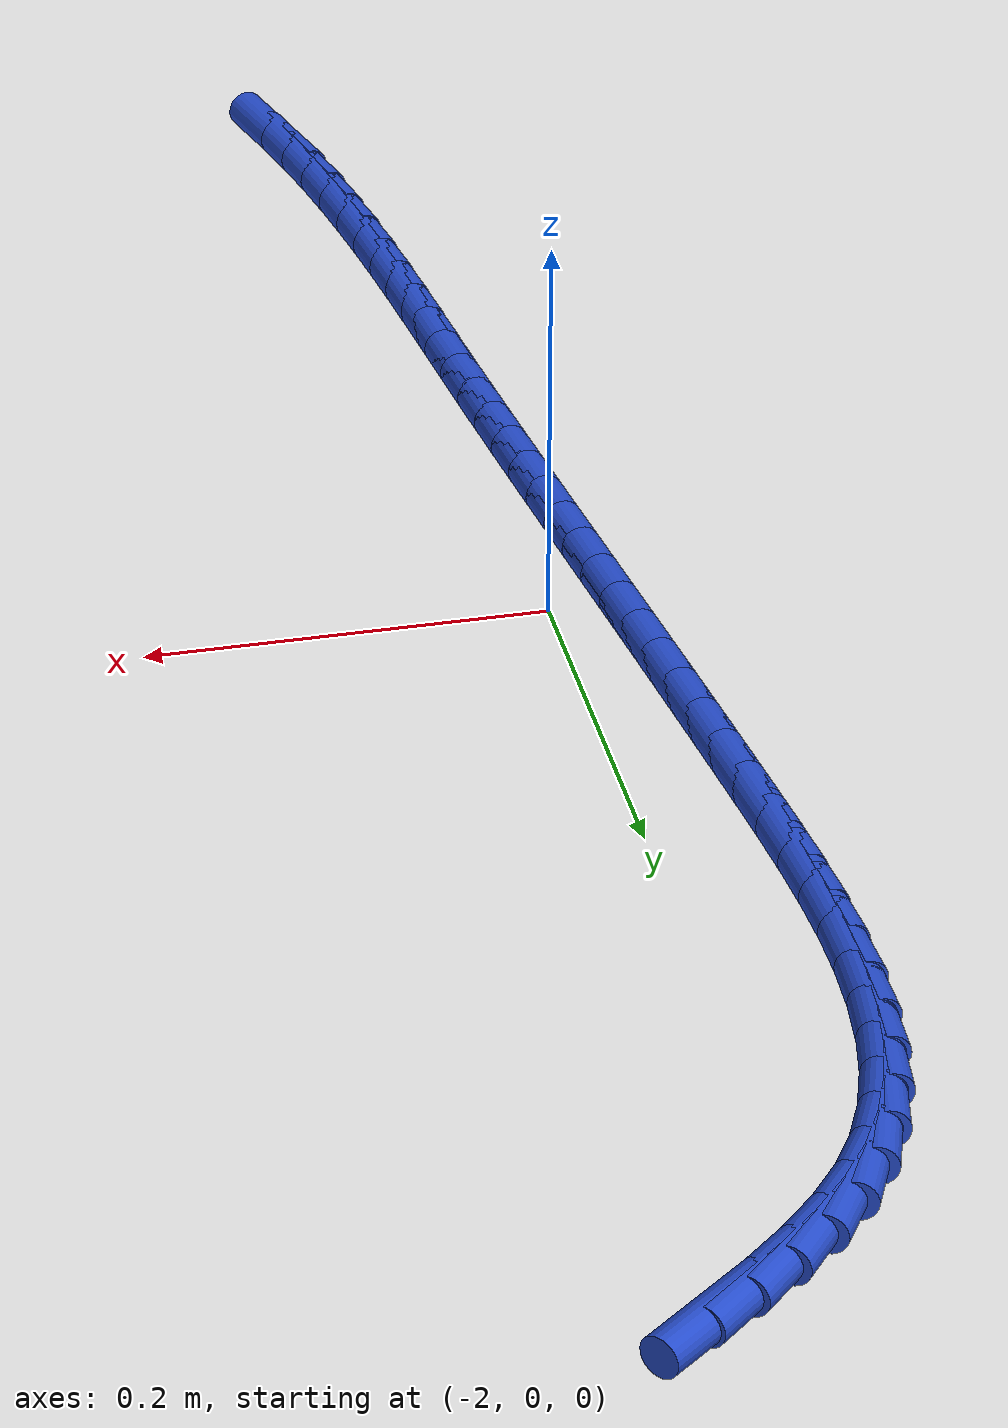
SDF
<sdf version="1.6">
 <world name="default">
  <model name="ground_plane">
   <static>1</static>
   <link name="link">
    <collision name="collision">
     <geometry><plane><normal>0 0 1</normal><size>100 100</size></plane></geometry>
     <surface><friction><ode><mu>100</mu><mu2>50</mu2></ode></friction></surface>
    </collision>
    <visual name="visual">
     <cast_shadows>0</cast_shadows>
     <geometry><plane><normal>0 0 1</normal><size>100 100</size></plane></geometry>
     <material>
      <script><uri>file://media/materials/scripts/gazebo.material</uri><name>Gazebo/WhiteGlow</name></script>
     </material>
    </visual>
   </link>
  </model>
  <model name="line">
   <link name="link_104">
    <pose>-1.9479692266159243 0.5484202005025914 0.01 0 1.57 0.6592279127218851</pose>
    <collision name="collision">
     <geometry><cylinder><radius>0.01</radius><length>0.08</length></cylinder></geometry>
    </collision>
    <visual name="visual">
     <material>
      <script><name>Gazebo/Blue</name><uri>file://media/materials/scripts/gazebo.material</uri></script>
     </material>
     <geometry><cylinder><radius>0.01</radius><length>0.08</length></cylinder></geometry>
    </visual>
   </link>
   <link name="link_105">
    <pose>-1.9694956136626476 0.5317400810880534 0.01 0 1.57 0.7125604217045852</pose>
    <collision name="collision">
     <geometry><cylinder><radius>0.01</radius><length>0.08</length></cylinder></geometry>
    </collision>
    <visual name="visual">
     <material>
      <script><name>Gazebo/Blue</name><uri>file://media/materials/scripts/gazebo.material</uri></script>
     </material>
     <geometry><cylinder><radius>0.01</radius><length>0.08</length></cylinder></geometry>
    </visual>
   </link>
   <link name="link_106">
    <pose>-1.9896621631925504 0.5143163732939728 0.01 0 1.57 0.7882978524208795</pose>
    <collision name="collision">
     <geometry><cylinder><radius>0.01</radius><length>0.08</length></cylinder></geometry>
    </collision>
    <visual name="visual">
     <material>
      <script><name>Gazebo/Blue</name><uri>file://media/materials/scripts/gazebo.material</uri></script>
     </material>
     <geometry><cylinder><radius>0.01</radius><length>0.08</length></cylinder></geometry>
    </visual>
   </link>
   <link name="link_107">
    <pose>-2.0079852460549663 0.49588671862325867 0.01 0 1.57 0.8887429794666911</pose>
    <collision name="collision">
     <geometry><cylinder><radius>0.01</radius><length>0.08</length></cylinder></geometry>
    </collision>
    <visual name="visual">
     <material>
      <script><name>Gazebo/Blue</name><uri>file://media/materials/scripts/gazebo.material</uri></script>
     </material>
     <geometry><cylinder><radius>0.01</radius><length>0.08</length></cylinder></geometry>
    </visual>
   </link>
   <link name="link_108">
    <pose>-2.0239812330992293 0.4761887585788196 0.01 0 1.57 1.0145056644045571</pose>
    <collision name="collision">
     <geometry><cylinder><radius>0.01</radius><length>0.08</length></cylinder></geometry>
    </collision>
    <visual name="visual">
     <material>
      <script><name>Gazebo/Blue</name><uri>file://media/materials/scripts/gazebo.material</uri></script>
     </material>
     <geometry><cylinder><radius>0.01</radius><length>0.08</length></cylinder></geometry>
    </visual>
   </link>
   <link name="link_109">
    <pose>-2.037177144602828 0.4549664432621118 0.01 0 1.57 1.1479261883613923</pose>
    <collision name="collision">
     <geometry><cylinder><radius>0.01</radius><length>0.08</length></cylinder></geometry>
    </collision>
    <visual name="visual">
     <material>
      <script><name>Gazebo/Blue</name><uri>file://media/materials/scripts/gazebo.material</uri></script>
     </material>
     <geometry><cylinder><radius>0.01</radius><length>0.08</length></cylinder></geometry>
    </visual>
   </link>
   <link name="link_110">
    <pose>-2.0474385615912616 0.4321642822611866 0.01 0 1.57 1.266764314490775</pose>
    <collision name="collision">
     <geometry><cylinder><radius>0.01</radius><length>0.08</length></cylinder></geometry>
    </collision>
    <visual name="visual">
     <material>
      <script><name>Gazebo/Blue</name><uri>file://media/materials/scripts/gazebo.material</uri></script>
     </material>
     <geometry><cylinder><radius>0.01</radius><length>0.08</length></cylinder></geometry>
    </visual>
   </link>
   <link name="link_111">
    <pose>-2.0550316126337016 0.4079640649142973 0.01 0 1.57 1.3683558382890526</pose>
    <collision name="collision">
     <geometry><cylinder><radius>0.01</radius><length>0.08</length></cylinder></geometry>
    </collision>
    <visual name="visual">
     <material>
      <script><name>Gazebo/Blue</name><uri>file://media/materials/scripts/gazebo.material</uri></script>
     </material>
     <geometry><cylinder><radius>0.01</radius><length>0.08</length></cylinder></geometry>
    </visual>
   </link>
   <link name="link_112">
    <pose>-2.060245583045327 0.3825612983492446 0.01 0 1.57 1.4530475347364338</pose>
    <collision name="collision">
     <geometry><cylinder><radius>0.01</radius><length>0.08</length></cylinder></geometry>
    </collision>
    <visual name="visual">
     <material>
      <script><name>Gazebo/Blue</name><uri>file://media/materials/scripts/gazebo.material</uri></script>
     </material>
     <geometry><cylinder><radius>0.01</radius><length>0.08</length></cylinder></geometry>
    </visual>
   </link>
   <link name="link_113">
    <pose>-2.0633697581413153 0.35615148969382865 0.01 0 1.57 1.5222085962167682</pose>
    <collision name="collision">
     <geometry><cylinder><radius>0.01</radius><length>0.08</length></cylinder></geometry>
    </collision>
    <visual name="visual">
     <material>
      <script><name>Gazebo/Blue</name><uri>file://media/materials/scripts/gazebo.material</uri></script>
     </material>
     <geometry><cylinder><radius>0.01</radius><length>0.08</length></cylinder></geometry>
    </visual>
   </link>
   <link name="link_114">
    <pose>-2.064693423236846 0.3289301460758499 0.01 0 1.57 -1.5640587383712157</pose>
    <collision name="collision">
     <geometry><cylinder><radius>0.01</radius><length>0.08</length></cylinder></geometry>
    </collision>
    <visual name="visual">
     <material>
      <script><name>Gazebo/Blue</name><uri>file://media/materials/scripts/gazebo.material</uri></script>
     </material>
     <geometry><cylinder><radius>0.01</radius><length>0.08</length></cylinder></geometry>
    </visual>
   </link>
   <link name="link_115">
    <pose>-2.0645058636470965 0.30109277462310896 0.01 0 1.57 -1.5209577984872704</pose>
    <collision name="collision">
     <geometry><cylinder><radius>0.01</radius><length>0.08</length></cylinder></geometry>
    </collision>
    <visual name="visual">
     <material>
      <script><name>Gazebo/Blue</name><uri>file://media/materials/scripts/gazebo.material</uri></script>
     </material>
     <geometry><cylinder><radius>0.01</radius><length>0.08</length></cylinder></geometry>
    </visual>
   </link>
   <link name="link_116">
    <pose>-2.0630963646872447 0.2728348824634061 0.01 0 1.57 -1.4887507904773787</pose>
    <collision name="collision">
     <geometry><cylinder><radius>0.01</radius><length>0.08</length></cylinder></geometry>
    </collision>
    <visual name="visual">
     <material>
      <script><name>Gazebo/Blue</name><uri>file://media/materials/scripts/gazebo.material</uri></script>
     </material>
     <geometry><cylinder><radius>0.01</radius><length>0.08</length></cylinder></geometry>
    </visual>
   </link>
   <link name="link_117">
    <pose>-2.0607542116724695 0.2443519767245417 0.01 0 1.57 -1.4664669638359296</pose>
    <collision name="collision">
     <geometry><cylinder><radius>0.01</radius><length>0.08</length></cylinder></geometry>
    </collision>
    <visual name="visual">
     <material>
      <script><name>Gazebo/Blue</name><uri>file://media/materials/scripts/gazebo.material</uri></script>
     </material>
     <geometry><cylinder><radius>0.01</radius><length>0.08</length></cylinder></geometry>
    </visual>
   </link>
   <link name="link_118">
    <pose>-2.0577686899179484 0.21583956453431627 0.01 0 1.57 -1.4535228866641623</pose>
    <collision name="collision">
     <geometry><cylinder><radius>0.01</radius><length>0.08</length></cylinder></geometry>
    </collision>
    <visual name="visual">
     <material>
      <script><name>Gazebo/Blue</name><uri>file://media/materials/scripts/gazebo.material</uri></script>
     </material>
     <geometry><cylinder><radius>0.01</radius><length>0.08</length></cylinder></geometry>
    </visual>
   </link>
   <link name="link_119">
    <pose>-2.0544290847388607 0.18749315302053016 0.01 0 1.57 -1.4488241748962007</pose>
    <collision name="collision">
     <geometry><cylinder><radius>0.01</radius><length>0.08</length></cylinder></geometry>
    </collision>
    <visual name="visual">
     <material>
      <script><name>Gazebo/Blue</name><uri>file://media/materials/scripts/gazebo.material</uri></script>
     </material>
     <geometry><cylinder><radius>0.01</radius><length>0.08</length></cylinder></geometry>
    </visual>
   </link>
   <link name="link_120">
    <pose>-2.050995826946633 0.15948499650491274 0.01 0 1.57 -1.4466608339721563</pose>
    <collision name="collision">
     <geometry><cylinder><radius>0.01</radius><length>0.08</length></cylinder></geometry>
    </collision>
    <visual name="visual">
     <material>
      <script><name>Gazebo/Blue</name><uri>file://media/materials/scripts/gazebo.material</uri></script>
     </material>
     <geometry><cylinder><radius>0.01</radius><length>0.08</length></cylinder></geometry>
    </visual>
   </link>
   <link name="link_121">
    <pose>-2.047546349968424 0.1318398783034594 0.01 0 1.57 -1.4448046887370725</pose>
    <collision name="collision">
     <geometry><cylinder><radius>0.01</radius><length>0.08</length></cylinder></geometry>
    </collision>
    <visual name="visual">
     <material>
      <script><name>Gazebo/Blue</name><uri>file://media/materials/scripts/gazebo.material</uri></script>
     </material>
     <geometry><cylinder><radius>0.01</radius><length>0.08</length></cylinder></geometry>
    </visual>
   </link>
   <link name="link_122">
    <pose>-2.044086571231204 0.10452494956154458 0.01 0 1.57 -1.4432679268301343</pose>
    <collision name="collision">
     <geometry><cylinder><radius>0.01</radius><length>0.08</length></cylinder></geometry>
    </collision>
    <visual name="visual">
     <material>
      <script><name>Gazebo/Blue</name><uri>file://media/materials/scripts/gazebo.material</uri></script>
     </material>
     <geometry><cylinder><radius>0.01</radius><length>0.08</length></cylinder></geometry>
    </visual>
   </link>
   <link name="link_123">
    <pose>-2.040622243431435 0.07750722867415312 0.01 0 1.57 -1.442066474147903</pose>
    <collision name="collision">
     <geometry><cylinder><radius>0.01</radius><length>0.08</length></cylinder></geometry>
    </collision>
    <visual name="visual">
     <material>
      <script><name>Gazebo/Blue</name><uri>file://media/materials/scripts/gazebo.material</uri></script>
     </material>
     <geometry><cylinder><radius>0.01</radius><length>0.08</length></cylinder></geometry>
    </visual>
   </link>
   <link name="link_124">
    <pose>-2.0371591192655756 0.05075373403626965 0.01 0 1.57 -1.4412145055437176</pose>
    <collision name="collision">
     <geometry><cylinder><radius>0.01</radius><length>0.08</length></cylinder></geometry>
    </collision>
    <visual name="visual">
     <material>
      <script><name>Gazebo/Blue</name><uri>file://media/materials/scripts/gazebo.material</uri></script>
     </material>
     <geometry><cylinder><radius>0.01</radius><length>0.08</length></cylinder></geometry>
    </visual>
   </link>
   <link name="link_125">
    <pose>-2.0337029514300866 0.0242314840428789 0.01 0 1.57 -1.4407241917962634</pose>
    <collision name="collision">
     <geometry><cylinder><radius>0.01</radius><length>0.08</length></cylinder></geometry>
    </collision>
    <visual name="visual">
     <material>
      <script><name>Gazebo/Blue</name><uri>file://media/materials/scripts/gazebo.material</uri></script>
     </material>
     <geometry><cylinder><radius>0.01</radius><length>0.08</length></cylinder></geometry>
    </visual>
   </link>
   <link name="link_126">
    <pose>-2.0302594926214295 -0.002092502911034466 0.01 0 1.57 -1.440605467908802</pose>
    <collision name="collision">
     <geometry><cylinder><radius>0.01</radius><length>0.08</length></cylinder></geometry>
    </collision>
    <visual name="visual">
     <material>
      <script><name>Gazebo/Blue</name><uri>file://media/materials/scripts/gazebo.material</uri></script>
     </material>
     <geometry><cylinder><radius>0.01</radius><length>0.08</length></cylinder></geometry>
    </visual>
   </link>
   <link name="link_127">
    <pose>-2.026834495536064 -0.028251208430485706 0.01 0 1.57 -1.4408658296681018</pose>
    <collision name="collision">
     <geometry><cylinder><radius>0.01</radius><length>0.08</length></cylinder></geometry>
    </collision>
    <visual name="visual">
     <material>
      <script><name>Gazebo/Blue</name><uri>file://media/materials/scripts/gazebo.material</uri></script>
     </material>
     <geometry><cylinder><radius>0.01</radius><length>0.08</length></cylinder></geometry>
    </visual>
   </link>
   <link name="link_128">
    <pose>-2.023433712870452 -0.054277614120490175 0.01 0 1.57 -1.441510164938993</pose>
    <collision name="collision">
     <geometry><cylinder><radius>0.01</radius><length>0.08</length></cylinder></geometry>
    </collision>
    <visual name="visual">
     <material>
      <script><name>Gazebo/Blue</name><uri>file://media/materials/scripts/gazebo.material</uri></script>
     </material>
     <geometry><cylinder><radius>0.01</radius><length>0.08</length></cylinder></geometry>
    </visual>
   </link>
   <link name="link_129">
    <pose>-2.020062897321051 -0.0802047015860631 0.01 0 1.57 -1.4425406254261661</pose>
    <collision name="collision">
     <geometry><cylinder><radius>0.01</radius><length>0.08</length></cylinder></geometry>
    </collision>
    <visual name="visual">
     <material>
      <script><name>Gazebo/Blue</name><uri>file://media/materials/scripts/gazebo.material</uri></script>
     </material>
     <geometry><cylinder><radius>0.01</radius><length>0.08</length></cylinder></geometry>
    </visual>
   </link>
   <link name="link_130">
    <pose>-2.0167278015843246 -0.10606545243221985 0.01 0 1.57 -1.4439565436089195</pose>
    <collision name="collision">
     <geometry><cylinder><radius>0.01</radius><length>0.08</length></cylinder></geometry>
    </collision>
    <visual name="visual">
     <material>
      <script><name>Gazebo/Blue</name><uri>file://media/materials/scripts/gazebo.material</uri></script>
     </material>
     <geometry><cylinder><radius>0.01</radius><length>0.08</length></cylinder></geometry>
    </visual>
   </link>
   <link name="link_131">
    <pose>-2.0134341783567318 -0.1318928482639757 0.01 0 1.57 -1.4457543982900842</pose>
    <collision name="collision">
     <geometry><cylinder><radius>0.01</radius><length>0.08</length></cylinder></geometry>
    </collision>
    <visual name="visual">
     <material>
      <script><name>Gazebo/Blue</name><uri>file://media/materials/scripts/gazebo.material</uri></script>
     </material>
     <geometry><cylinder><radius>0.01</radius><length>0.08</length></cylinder></geometry>
    </visual>
   </link>
   <link name="link_132">
    <pose>-2.0101877803347334 -0.15771987068634596 0.01 0 1.57 -1.4479278307349812</pose>
    <collision name="collision">
     <geometry><cylinder><radius>0.01</radius><length>0.08</length></cylinder></geometry>
    </collision>
    <visual name="visual">
     <material>
      <script><name>Gazebo/Blue</name><uri>file://media/materials/scripts/gazebo.material</uri></script>
     </material>
     <geometry><cylinder><radius>0.01</radius><length>0.08</length></cylinder></geometry>
    </visual>
   </link>
   <link name="link_133">
    <pose>-2.00699436021479 -0.18357950130434592 0.01 0 1.57 -1.4504677117882818</pose>
    <collision name="collision">
     <geometry><cylinder><radius>0.01</radius><length>0.08</length></cylinder></geometry>
    </collision>
    <visual name="visual">
     <material>
      <script><name>Gazebo/Blue</name><uri>file://media/materials/scripts/gazebo.material</uri></script>
     </material>
     <geometry><cylinder><radius>0.01</radius><length>0.08</length></cylinder></geometry>
    </visual>
   </link>
   <link name="link_134">
    <pose>-2.0038596706933616 -0.20950472172299087 0.01 0 1.57 -1.4533462245461928</pose>
    <collision name="collision">
     <geometry><cylinder><radius>0.01</radius><length>0.08</length></cylinder></geometry>
    </collision>
    <visual name="visual">
     <material>
      <script><name>Gazebo/Blue</name><uri>file://media/materials/scripts/gazebo.material</uri></script>
     </material>
     <geometry><cylinder><radius>0.01</radius><length>0.08</length></cylinder></geometry>
    </visual>
   </link>
   <link name="link_135">
    <pose>-2.0007890670860173 -0.2355282957596103 0.01 0 1.57 -1.4552197867954524</pose>
    <collision name="collision">
     <geometry><cylinder><radius>0.01</radius><length>0.08</length></cylinder></geometry>
    </collision>
    <visual name="visual">
     <material>
      <script><name>Gazebo/Blue</name><uri>file://media/materials/scripts/gazebo.material</uri></script>
     </material>
     <geometry><cylinder><radius>0.01</radius><length>0.08</length></cylinder></geometry>
    </visual>
   </link>
   <link name="link_136">
    <pose>-1.997754774234533 -0.26166482981792416 0.01 0 1.57 -1.4537956083086758</pose>
    <collision name="collision">
     <geometry><cylinder><radius>0.01</radius><length>0.08</length></cylinder></geometry>
    </collision>
    <visual name="visual">
     <material>
      <script><name>Gazebo/Blue</name><uri>file://media/materials/scripts/gazebo.material</uri></script>
     </material>
     <geometry><cylinder><radius>0.01</radius><length>0.08</length></cylinder></geometry>
    </visual>
   </link>
   <link name="link_137">
    <pose>-1.9946714639170886 -0.2878973878979196 0.01 0 1.57 -1.4488804211500999</pose>
    <collision name="collision">
     <geometry><cylinder><radius>0.01</radius><length>0.08</length></cylinder></geometry>
    </collision>
    <visual name="visual">
     <material>
      <script><name>Gazebo/Blue</name><uri>file://media/materials/scripts/gazebo.material</uri></script>
     </material>
     <geometry><cylinder><radius>0.01</radius><length>0.08</length></cylinder></geometry>
    </visual>
   </link>
   <link name="link_138">
    <pose>-1.9914480539938202 -0.3142058805200876 0.01 0 1.57 -1.4405058705686038</pose>
    <collision name="collision">
     <geometry><cylinder><radius>0.01</radius><length>0.08</length></cylinder></geometry>
    </collision>
    <visual name="visual">
     <material>
      <script><name>Gazebo/Blue</name><uri>file://media/materials/scripts/gazebo.material</uri></script>
     </material>
     <geometry><cylinder><radius>0.01</radius><length>0.08</length></cylinder></geometry>
    </visual>
   </link>
   <link name="link_139">
    <pose>-1.9879934623248634 -0.3405702182049194 0.01 0 1.57 -1.4286983170854284</pose>
    <collision name="collision">
     <geometry><cylinder><radius>0.01</radius><length>0.08</length></cylinder></geometry>
    </collision>
    <visual name="visual">
     <material>
      <script><name>Gazebo/Blue</name><uri>file://media/materials/scripts/gazebo.material</uri></script>
     </material>
     <geometry><cylinder><radius>0.01</radius><length>0.08</length></cylinder></geometry>
    </visual>
   </link>
   <link name="link_140">
    <pose>-1.9842166067703546 -0.3669703114729062 0.01 0 1.57 -1.4134819654731408</pose>
    <collision name="collision">
     <geometry><cylinder><radius>0.01</radius><length>0.08</length></cylinder></geometry>
    </collision>
    <visual name="visual">
     <material>
      <script><name>Gazebo/Blue</name><uri>file://media/materials/scripts/gazebo.material</uri></script>
     </material>
     <geometry><cylinder><radius>0.01</radius><length>0.08</length></cylinder></geometry>
    </visual>
   </link>
   <link name="link_141">
    <pose>-1.9800264051904304 -0.39338607084453925 0.01 0 1.57 -1.3948830860569277</pose>
    <collision name="collision">
     <geometry><cylinder><radius>0.01</radius><length>0.08</length></cylinder></geometry>
    </collision>
    <visual name="visual">
     <material>
      <script><name>Gazebo/Blue</name><uri>file://media/materials/scripts/gazebo.material</uri></script>
     </material>
     <geometry><cylinder><radius>0.01</radius><length>0.08</length></cylinder></geometry>
    </visual>
   </link>
   <link name="link_142">
    <pose>-1.9753317754452266 -0.4197974068403097 0.01 0 1.57 -1.3729352726607131</pose>
    <collision name="collision">
     <geometry><cylinder><radius>0.01</radius><length>0.08</length></cylinder></geometry>
    </collision>
    <visual name="visual">
     <material>
      <script><name>Gazebo/Blue</name><uri>file://media/materials/scripts/gazebo.material</uri></script>
     </material>
     <geometry><cylinder><radius>0.01</radius><length>0.08</length></cylinder></geometry>
    </visual>
   </link>
   <link name="link_143">
    <pose>-1.97004163539488 -0.4461842299807089 0.01 0 1.57 -1.3476856339880698</pose>
    <collision name="collision">
     <geometry><cylinder><radius>0.01</radius><length>0.08</length></cylinder></geometry>
    </collision>
    <visual name="visual">
     <material>
      <script><name>Gazebo/Blue</name><uri>file://media/materials/scripts/gazebo.material</uri></script>
     </material>
     <geometry><cylinder><radius>0.01</radius><length>0.08</length></cylinder></geometry>
    </visual>
   </link>
   <link name="link_144">
    <pose>-1.9640649028995265 -0.4725264507862278 0.01 0 1.57 -1.3190324522005483</pose>
    <collision name="collision">
     <geometry><cylinder><radius>0.01</radius><length>0.08</length></cylinder></geometry>
    </collision>
    <visual name="visual">
     <material>
      <script><name>Gazebo/Blue</name><uri>file://media/materials/scripts/gazebo.material</uri></script>
     </material>
     <geometry><cylinder><radius>0.01</radius><length>0.08</length></cylinder></geometry>
    </visual>
   </link>
   <link name="link_145">
    <pose>-1.9573092073402514 -0.4987905526176088 0.01 0 1.57 -1.2856779596122907</pose>
    <collision name="collision">
     <geometry><cylinder><radius>0.01</radius><length>0.08</length></cylinder></geometry>
    </collision>
    <visual name="visual">
     <material>
      <script><name>Gazebo/Blue</name><uri>file://media/materials/scripts/gazebo.material</uri></script>
     </material>
     <geometry><cylinder><radius>0.01</radius><length>0.08</length></cylinder></geometry>
    </visual>
   </link>
  </model>
 </world>
</sdf>
